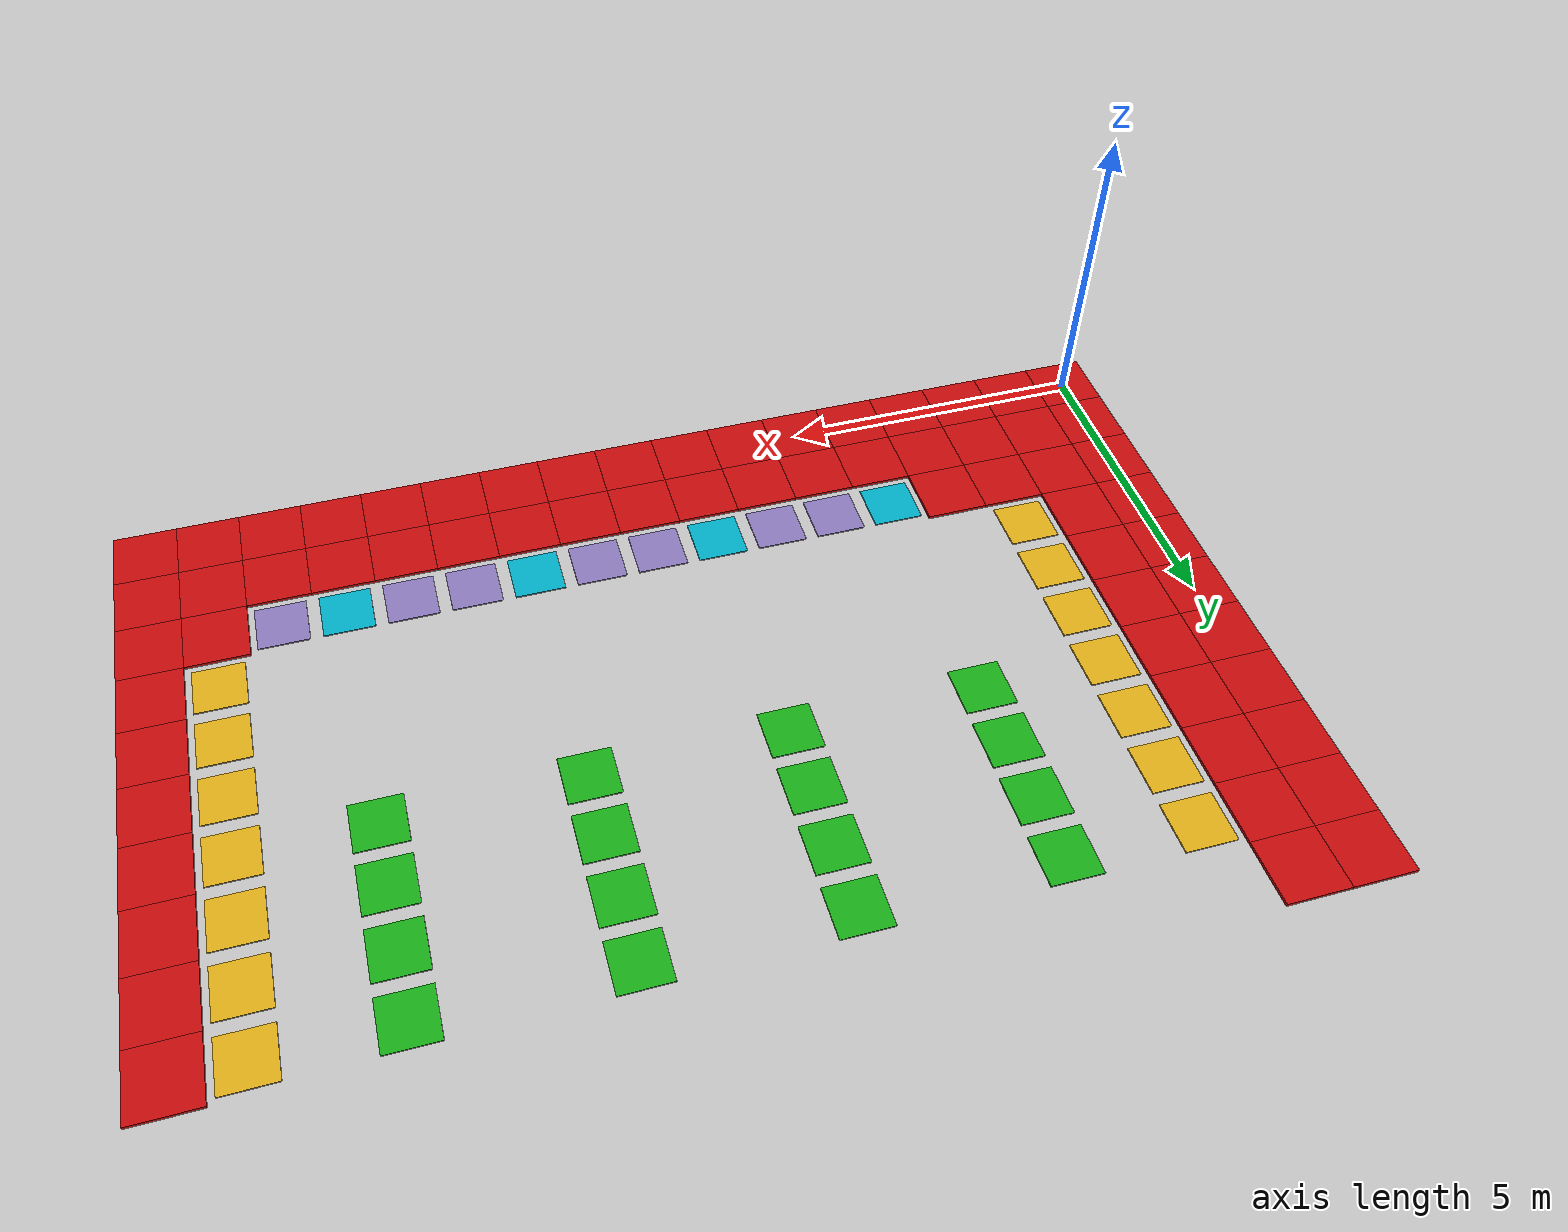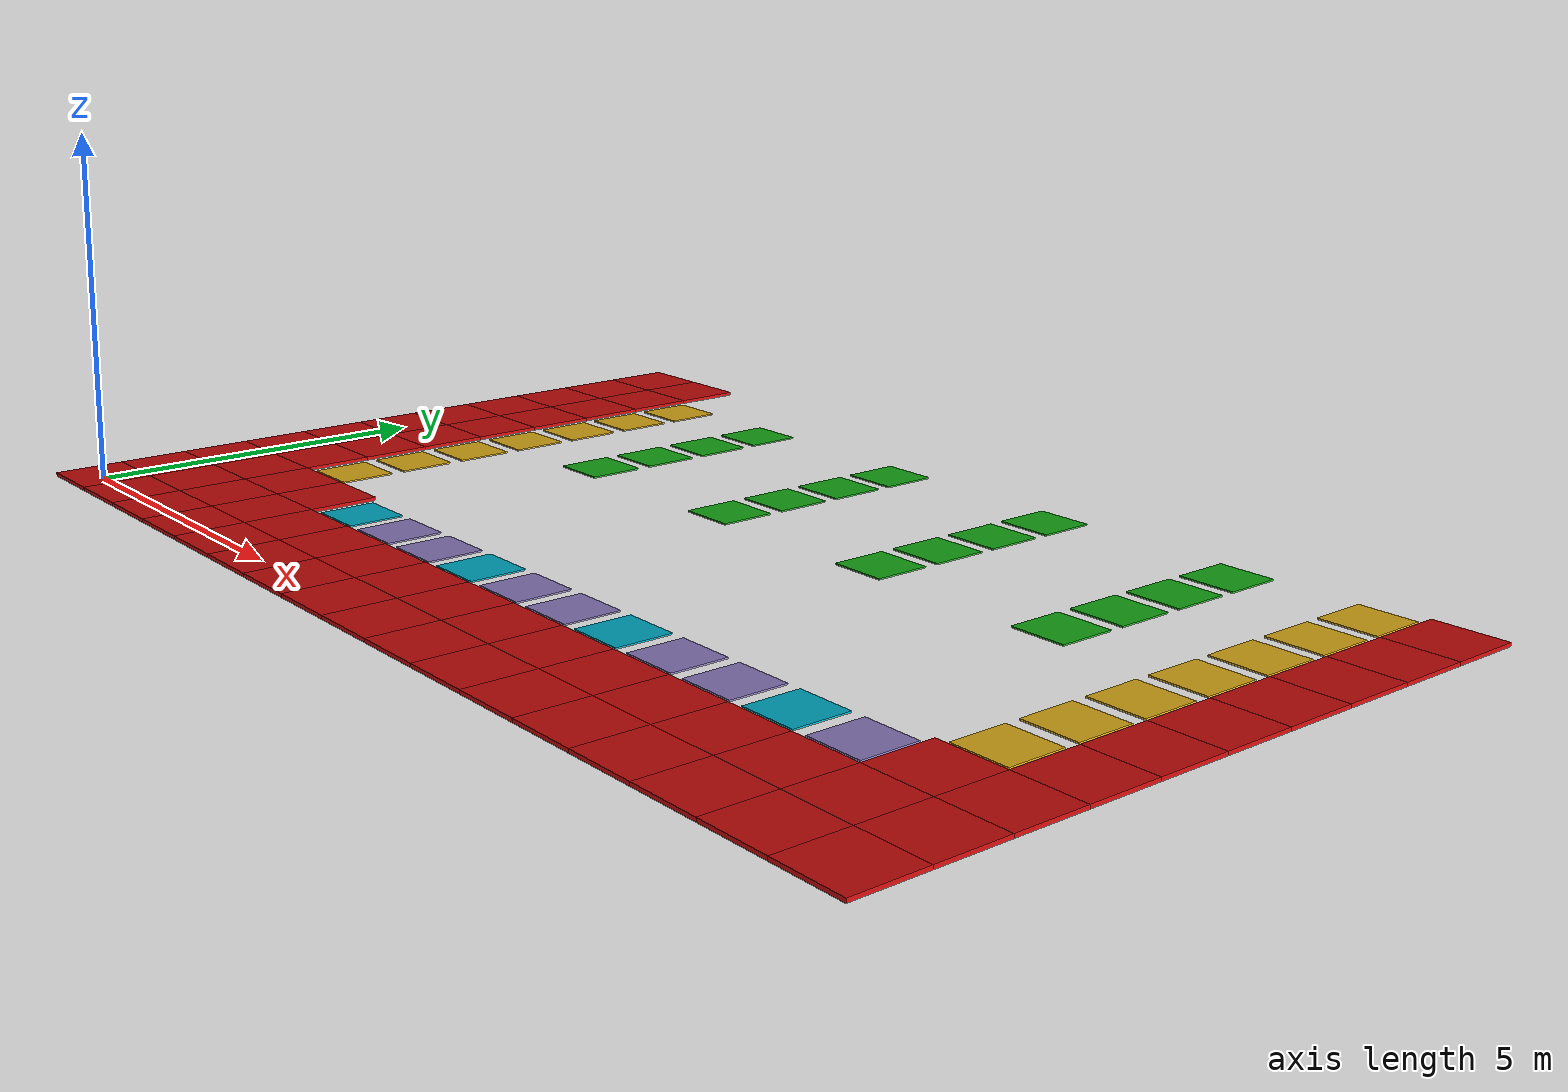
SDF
<sdf version="1.10">
 <world name="warehouse_grid">
  <model name="blocked_0000">
   <static>true</static>
   <pose>0.0
        0.0
        0.045
        0 0 0</pose>
   <link name="link">
    <visual name="visual">
     <geometry><box><size>1.0
                1.0
                0.05</size></box></geometry>
     <material><ambient>0.8 0.05 0.05 1</ambient><diffuse>0.8 0.05 0.05 1</diffuse></material>
    </visual>
   </link>
  </model>
  <model name="blocked_0001">
   <static>true</static>
   <pose>0.0
        1.0
        0.045
        0 0 0</pose>
   <link name="link">
    <visual name="visual">
     <geometry><box><size>1.0
                1.0
                0.05</size></box></geometry>
     <material><ambient>0.8 0.05 0.05 1</ambient><diffuse>0.8 0.05 0.05 1</diffuse></material>
    </visual>
   </link>
  </model>
  <model name="blocked_0002">
   <static>true</static>
   <pose>0.0
        2.0
        0.045
        0 0 0</pose>
   <link name="link">
    <visual name="visual">
     <geometry><box><size>1.0
                1.0
                0.05</size></box></geometry>
     <material><ambient>0.8 0.05 0.05 1</ambient><diffuse>0.8 0.05 0.05 1</diffuse></material>
    </visual>
   </link>
  </model>
  <model name="blocked_0003">
   <static>true</static>
   <pose>0.0
        3.0
        0.045
        0 0 0</pose>
   <link name="link">
    <visual name="visual">
     <geometry><box><size>1.0
                1.0
                0.05</size></box></geometry>
     <material><ambient>0.8 0.05 0.05 1</ambient><diffuse>0.8 0.05 0.05 1</diffuse></material>
    </visual>
   </link>
  </model>
  <model name="blocked_0004">
   <static>true</static>
   <pose>0.0
        4.0
        0.045
        0 0 0</pose>
   <link name="link">
    <visual name="visual">
     <geometry><box><size>1.0
                1.0
                0.05</size></box></geometry>
     <material><ambient>0.8 0.05 0.05 1</ambient><diffuse>0.8 0.05 0.05 1</diffuse></material>
    </visual>
   </link>
  </model>
  <model name="blocked_0005">
   <static>true</static>
   <pose>0.0
        5.0
        0.045
        0 0 0</pose>
   <link name="link">
    <visual name="visual">
     <geometry><box><size>1.0
                1.0
                0.05</size></box></geometry>
     <material><ambient>0.8 0.05 0.05 1</ambient><diffuse>0.8 0.05 0.05 1</diffuse></material>
    </visual>
   </link>
  </model>
  <model name="blocked_0006">
   <static>true</static>
   <pose>0.0
        6.0
        0.045
        0 0 0</pose>
   <link name="link">
    <visual name="visual">
     <geometry><box><size>1.0
                1.0
                0.05</size></box></geometry>
     <material><ambient>0.8 0.05 0.05 1</ambient><diffuse>0.8 0.05 0.05 1</diffuse></material>
    </visual>
   </link>
  </model>
  <model name="blocked_0007">
   <static>true</static>
   <pose>0.0
        7.0
        0.045
        0 0 0</pose>
   <link name="link">
    <visual name="visual">
     <geometry><box><size>1.0
                1.0
                0.05</size></box></geometry>
     <material><ambient>0.8 0.05 0.05 1</ambient><diffuse>0.8 0.05 0.05 1</diffuse></material>
    </visual>
   </link>
  </model>
  <model name="blocked_0008">
   <static>true</static>
   <pose>0.0
        8.0
        0.045
        0 0 0</pose>
   <link name="link">
    <visual name="visual">
     <geometry><box><size>1.0
                1.0
                0.05</size></box></geometry>
     <material><ambient>0.8 0.05 0.05 1</ambient><diffuse>0.8 0.05 0.05 1</diffuse></material>
    </visual>
   </link>
  </model>
  <model name="blocked_0009">
   <static>true</static>
   <pose>0.0
        9.0
        0.045
        0 0 0</pose>
   <link name="link">
    <visual name="visual">
     <geometry><box><size>1.0
                1.0
                0.05</size></box></geometry>
     <material><ambient>0.8 0.05 0.05 1</ambient><diffuse>0.8 0.05 0.05 1</diffuse></material>
    </visual>
   </link>
  </model>
  <model name="blocked_0010">
   <static>true</static>
   <pose>0.0
        10.0
        0.045
        0 0 0</pose>
   <link name="link">
    <visual name="visual">
     <geometry><box><size>1.0
                1.0
                0.05</size></box></geometry>
     <material><ambient>0.8 0.05 0.05 1</ambient><diffuse>0.8 0.05 0.05 1</diffuse></material>
    </visual>
   </link>
  </model>
  <model name="blocked_0024">
   <static>true</static>
   <pose>1.0
        0.0
        0.045
        0 0 0</pose>
   <link name="link">
    <visual name="visual">
     <geometry><box><size>1.0
                1.0
                0.05</size></box></geometry>
     <material><ambient>0.8 0.05 0.05 1</ambient><diffuse>0.8 0.05 0.05 1</diffuse></material>
    </visual>
   </link>
  </model>
  <model name="blocked_0025">
   <static>true</static>
   <pose>1.0
        1.0
        0.045
        0 0 0</pose>
   <link name="link">
    <visual name="visual">
     <geometry><box><size>1.0
                1.0
                0.05</size></box></geometry>
     <material><ambient>0.8 0.05 0.05 1</ambient><diffuse>0.8 0.05 0.05 1</diffuse></material>
    </visual>
   </link>
  </model>
  <model name="blocked_0026">
   <static>true</static>
   <pose>1.0
        2.0
        0.045
        0 0 0</pose>
   <link name="link">
    <visual name="visual">
     <geometry><box><size>1.0
                1.0
                0.05</size></box></geometry>
     <material><ambient>0.8 0.05 0.05 1</ambient><diffuse>0.8 0.05 0.05 1</diffuse></material>
    </visual>
   </link>
  </model>
  <model name="blocked_0027">
   <static>true</static>
   <pose>1.0
        3.0
        0.045
        0 0 0</pose>
   <link name="link">
    <visual name="visual">
     <geometry><box><size>1.0
                1.0
                0.05</size></box></geometry>
     <material><ambient>0.8 0.05 0.05 1</ambient><diffuse>0.8 0.05 0.05 1</diffuse></material>
    </visual>
   </link>
  </model>
  <model name="blocked_0028">
   <static>true</static>
   <pose>1.0
        4.0
        0.045
        0 0 0</pose>
   <link name="link">
    <visual name="visual">
     <geometry><box><size>1.0
                1.0
                0.05</size></box></geometry>
     <material><ambient>0.8 0.05 0.05 1</ambient><diffuse>0.8 0.05 0.05 1</diffuse></material>
    </visual>
   </link>
  </model>
  <model name="blocked_0029">
   <static>true</static>
   <pose>1.0
        5.0
        0.045
        0 0 0</pose>
   <link name="link">
    <visual name="visual">
     <geometry><box><size>1.0
                1.0
                0.05</size></box></geometry>
     <material><ambient>0.8 0.05 0.05 1</ambient><diffuse>0.8 0.05 0.05 1</diffuse></material>
    </visual>
   </link>
  </model>
  <model name="blocked_0030">
   <static>true</static>
   <pose>1.0
        6.0
        0.045
        0 0 0</pose>
   <link name="link">
    <visual name="visual">
     <geometry><box><size>1.0
                1.0
                0.05</size></box></geometry>
     <material><ambient>0.8 0.05 0.05 1</ambient><diffuse>0.8 0.05 0.05 1</diffuse></material>
    </visual>
   </link>
  </model>
  <model name="blocked_0031">
   <static>true</static>
   <pose>1.0
        7.0
        0.045
        0 0 0</pose>
   <link name="link">
    <visual name="visual">
     <geometry><box><size>1.0
                1.0
                0.05</size></box></geometry>
     <material><ambient>0.8 0.05 0.05 1</ambient><diffuse>0.8 0.05 0.05 1</diffuse></material>
    </visual>
   </link>
  </model>
  <model name="blocked_0032">
   <static>true</static>
   <pose>1.0
        8.0
        0.045
        0 0 0</pose>
   <link name="link">
    <visual name="visual">
     <geometry><box><size>1.0
                1.0
                0.05</size></box></geometry>
     <material><ambient>0.8 0.05 0.05 1</ambient><diffuse>0.8 0.05 0.05 1</diffuse></material>
    </visual>
   </link>
  </model>
  <model name="blocked_0033">
   <static>true</static>
   <pose>1.0
        9.0
        0.045
        0 0 0</pose>
   <link name="link">
    <visual name="visual">
     <geometry><box><size>1.0
                1.0
                0.05</size></box></geometry>
     <material><ambient>0.8 0.05 0.05 1</ambient><diffuse>0.8 0.05 0.05 1</diffuse></material>
    </visual>
   </link>
  </model>
  <model name="blocked_0034">
   <static>true</static>
   <pose>1.0
        10.0
        0.045
        0 0 0</pose>
   <link name="link">
    <visual name="visual">
     <geometry><box><size>1.0
                1.0
                0.05</size></box></geometry>
     <material><ambient>0.8 0.05 0.05 1</ambient><diffuse>0.8 0.05 0.05 1</diffuse></material>
    </visual>
   </link>
  </model>
  <model name="blocked_0048">
   <static>true</static>
   <pose>2.0
        0.0
        0.045
        0 0 0</pose>
   <link name="link">
    <visual name="visual">
     <geometry><box><size>1.0
                1.0
                0.05</size></box></geometry>
     <material><ambient>0.8 0.05 0.05 1</ambient><diffuse>0.8 0.05 0.05 1</diffuse></material>
    </visual>
   </link>
  </model>
  <model name="blocked_0049">
   <static>true</static>
   <pose>2.0
        1.0
        0.045
        0 0 0</pose>
   <link name="link">
    <visual name="visual">
     <geometry><box><size>1.0
                1.0
                0.05</size></box></geometry>
     <material><ambient>0.8 0.05 0.05 1</ambient><diffuse>0.8 0.05 0.05 1</diffuse></material>
    </visual>
   </link>
  </model>
  <model name="blocked_0050">
   <static>true</static>
   <pose>2.0
        2.0
        0.045
        0 0 0</pose>
   <link name="link">
    <visual name="visual">
     <geometry><box><size>1.0
                1.0
                0.05</size></box></geometry>
     <material><ambient>0.8 0.05 0.05 1</ambient><diffuse>0.8 0.05 0.05 1</diffuse></material>
    </visual>
   </link>
  </model>
  <model name="blocked_0054">
   <static>true</static>
   <pose>3.0
        0.0
        0.045
        0 0 0</pose>
   <link name="link">
    <visual name="visual">
     <geometry><box><size>1.0
                1.0
                0.05</size></box></geometry>
     <material><ambient>0.8 0.05 0.05 1</ambient><diffuse>0.8 0.05 0.05 1</diffuse></material>
    </visual>
   </link>
  </model>
  <model name="blocked_0055">
   <static>true</static>
   <pose>3.0
        1.0
        0.045
        0 0 0</pose>
   <link name="link">
    <visual name="visual">
     <geometry><box><size>1.0
                1.0
                0.05</size></box></geometry>
     <material><ambient>0.8 0.05 0.05 1</ambient><diffuse>0.8 0.05 0.05 1</diffuse></material>
    </visual>
   </link>
  </model>
  <model name="blocked_0056">
   <static>true</static>
   <pose>3.0
        2.0
        0.045
        0 0 0</pose>
   <link name="link">
    <visual name="visual">
     <geometry><box><size>1.0
                1.0
                0.05</size></box></geometry>
     <material><ambient>0.8 0.05 0.05 1</ambient><diffuse>0.8 0.05 0.05 1</diffuse></material>
    </visual>
   </link>
  </model>
  <model name="blocked_0060">
   <static>true</static>
   <pose>4.0
        0.0
        0.045
        0 0 0</pose>
   <link name="link">
    <visual name="visual">
     <geometry><box><size>1.0
                1.0
                0.05</size></box></geometry>
     <material><ambient>0.8 0.05 0.05 1</ambient><diffuse>0.8 0.05 0.05 1</diffuse></material>
    </visual>
   </link>
  </model>
  <model name="blocked_0061">
   <static>true</static>
   <pose>4.0
        1.0
        0.045
        0 0 0</pose>
   <link name="link">
    <visual name="visual">
     <geometry><box><size>1.0
                1.0
                0.05</size></box></geometry>
     <material><ambient>0.8 0.05 0.05 1</ambient><diffuse>0.8 0.05 0.05 1</diffuse></material>
    </visual>
   </link>
  </model>
  <model name="blocked_0064">
   <static>true</static>
   <pose>5.0
        0.0
        0.045
        0 0 0</pose>
   <link name="link">
    <visual name="visual">
     <geometry><box><size>1.0
                1.0
                0.05</size></box></geometry>
     <material><ambient>0.8 0.05 0.05 1</ambient><diffuse>0.8 0.05 0.05 1</diffuse></material>
    </visual>
   </link>
  </model>
  <model name="blocked_0065">
   <static>true</static>
   <pose>5.0
        1.0
        0.045
        0 0 0</pose>
   <link name="link">
    <visual name="visual">
     <geometry><box><size>1.0
                1.0
                0.05</size></box></geometry>
     <material><ambient>0.8 0.05 0.05 1</ambient><diffuse>0.8 0.05 0.05 1</diffuse></material>
    </visual>
   </link>
  </model>
  <model name="blocked_0068">
   <static>true</static>
   <pose>6.0
        0.0
        0.045
        0 0 0</pose>
   <link name="link">
    <visual name="visual">
     <geometry><box><size>1.0
                1.0
                0.05</size></box></geometry>
     <material><ambient>0.8 0.05 0.05 1</ambient><diffuse>0.8 0.05 0.05 1</diffuse></material>
    </visual>
   </link>
  </model>
  <model name="blocked_0069">
   <static>true</static>
   <pose>6.0
        1.0
        0.045
        0 0 0</pose>
   <link name="link">
    <visual name="visual">
     <geometry><box><size>1.0
                1.0
                0.05</size></box></geometry>
     <material><ambient>0.8 0.05 0.05 1</ambient><diffuse>0.8 0.05 0.05 1</diffuse></material>
    </visual>
   </link>
  </model>
  <model name="blocked_0072">
   <static>true</static>
   <pose>7.0
        0.0
        0.045
        0 0 0</pose>
   <link name="link">
    <visual name="visual">
     <geometry><box><size>1.0
                1.0
                0.05</size></box></geometry>
     <material><ambient>0.8 0.05 0.05 1</ambient><diffuse>0.8 0.05 0.05 1</diffuse></material>
    </visual>
   </link>
  </model>
  <model name="blocked_0073">
   <static>true</static>
   <pose>7.0
        1.0
        0.045
        0 0 0</pose>
   <link name="link">
    <visual name="visual">
     <geometry><box><size>1.0
                1.0
                0.05</size></box></geometry>
     <material><ambient>0.8 0.05 0.05 1</ambient><diffuse>0.8 0.05 0.05 1</diffuse></material>
    </visual>
   </link>
  </model>
  <model name="blocked_0076">
   <static>true</static>
   <pose>8.0
        0.0
        0.045
        0 0 0</pose>
   <link name="link">
    <visual name="visual">
     <geometry><box><size>1.0
                1.0
                0.05</size></box></geometry>
     <material><ambient>0.8 0.05 0.05 1</ambient><diffuse>0.8 0.05 0.05 1</diffuse></material>
    </visual>
   </link>
  </model>
  <model name="blocked_0077">
   <static>true</static>
   <pose>8.0
        1.0
        0.045
        0 0 0</pose>
   <link name="link">
    <visual name="visual">
     <geometry><box><size>1.0
                1.0
                0.05</size></box></geometry>
     <material><ambient>0.8 0.05 0.05 1</ambient><diffuse>0.8 0.05 0.05 1</diffuse></material>
    </visual>
   </link>
  </model>
  <model name="blocked_0080">
   <static>true</static>
   <pose>9.0
        0.0
        0.045
        0 0 0</pose>
   <link name="link">
    <visual name="visual">
     <geometry><box><size>1.0
                1.0
                0.05</size></box></geometry>
     <material><ambient>0.8 0.05 0.05 1</ambient><diffuse>0.8 0.05 0.05 1</diffuse></material>
    </visual>
   </link>
  </model>
  <model name="blocked_0081">
   <static>true</static>
   <pose>9.0
        1.0
        0.045
        0 0 0</pose>
   <link name="link">
    <visual name="visual">
     <geometry><box><size>1.0
                1.0
                0.05</size></box></geometry>
     <material><ambient>0.8 0.05 0.05 1</ambient><diffuse>0.8 0.05 0.05 1</diffuse></material>
    </visual>
   </link>
  </model>
  <model name="blocked_0084">
   <static>true</static>
   <pose>10.0
        0.0
        0.045
        0 0 0</pose>
   <link name="link">
    <visual name="visual">
     <geometry><box><size>1.0
                1.0
                0.05</size></box></geometry>
     <material><ambient>0.8 0.05 0.05 1</ambient><diffuse>0.8 0.05 0.05 1</diffuse></material>
    </visual>
   </link>
  </model>
  <model name="blocked_0085">
   <static>true</static>
   <pose>10.0
        1.0
        0.045
        0 0 0</pose>
   <link name="link">
    <visual name="visual">
     <geometry><box><size>1.0
                1.0
                0.05</size></box></geometry>
     <material><ambient>0.8 0.05 0.05 1</ambient><diffuse>0.8 0.05 0.05 1</diffuse></material>
    </visual>
   </link>
  </model>
  <model name="blocked_0088">
   <static>true</static>
   <pose>11.0
        0.0
        0.045
        0 0 0</pose>
   <link name="link">
    <visual name="visual">
     <geometry><box><size>1.0
                1.0
                0.05</size></box></geometry>
     <material><ambient>0.8 0.05 0.05 1</ambient><diffuse>0.8 0.05 0.05 1</diffuse></material>
    </visual>
   </link>
  </model>
  <model name="blocked_0089">
   <static>true</static>
   <pose>11.0
        1.0
        0.045
        0 0 0</pose>
   <link name="link">
    <visual name="visual">
     <geometry><box><size>1.0
                1.0
                0.05</size></box></geometry>
     <material><ambient>0.8 0.05 0.05 1</ambient><diffuse>0.8 0.05 0.05 1</diffuse></material>
    </visual>
   </link>
  </model>
  <model name="blocked_0092">
   <static>true</static>
   <pose>12.0
        0.0
        0.045
        0 0 0</pose>
   <link name="link">
    <visual name="visual">
     <geometry><box><size>1.0
                1.0
                0.05</size></box></geometry>
     <material><ambient>0.8 0.05 0.05 1</ambient><diffuse>0.8 0.05 0.05 1</diffuse></material>
    </visual>
   </link>
  </model>
  <model name="blocked_0093">
   <static>true</static>
   <pose>12.0
        1.0
        0.045
        0 0 0</pose>
   <link name="link">
    <visual name="visual">
     <geometry><box><size>1.0
                1.0
                0.05</size></box></geometry>
     <material><ambient>0.8 0.05 0.05 1</ambient><diffuse>0.8 0.05 0.05 1</diffuse></material>
    </visual>
   </link>
  </model>
  <model name="blocked_0096">
   <static>true</static>
   <pose>13.0
        0.0
        0.045
        0 0 0</pose>
   <link name="link">
    <visual name="visual">
     <geometry><box><size>1.0
                1.0
                0.05</size></box></geometry>
     <material><ambient>0.8 0.05 0.05 1</ambient><diffuse>0.8 0.05 0.05 1</diffuse></material>
    </visual>
   </link>
  </model>
  <model name="blocked_0097">
   <static>true</static>
   <pose>13.0
        1.0
        0.045
        0 0 0</pose>
   <link name="link">
    <visual name="visual">
     <geometry><box><size>1.0
                1.0
                0.05</size></box></geometry>
     <material><ambient>0.8 0.05 0.05 1</ambient><diffuse>0.8 0.05 0.05 1</diffuse></material>
    </visual>
   </link>
  </model>
  <model name="blocked_0100">
   <static>true</static>
   <pose>14.0
        0.0
        0.045
        0 0 0</pose>
   <link name="link">
    <visual name="visual">
     <geometry><box><size>1.0
                1.0
                0.05</size></box></geometry>
     <material><ambient>0.8 0.05 0.05 1</ambient><diffuse>0.8 0.05 0.05 1</diffuse></material>
    </visual>
   </link>
  </model>
  <model name="blocked_0101">
   <static>true</static>
   <pose>14.0
        1.0
        0.045
        0 0 0</pose>
   <link name="link">
    <visual name="visual">
     <geometry><box><size>1.0
                1.0
                0.05</size></box></geometry>
     <material><ambient>0.8 0.05 0.05 1</ambient><diffuse>0.8 0.05 0.05 1</diffuse></material>
    </visual>
   </link>
  </model>
  <model name="blocked_0104">
   <static>true</static>
   <pose>15.0
        0.0
        0.045
        0 0 0</pose>
   <link name="link">
    <visual name="visual">
     <geometry><box><size>1.0
                1.0
                0.05</size></box></geometry>
     <material><ambient>0.8 0.05 0.05 1</ambient><diffuse>0.8 0.05 0.05 1</diffuse></material>
    </visual>
   </link>
  </model>
  <model name="blocked_0105">
   <static>true</static>
   <pose>15.0
        1.0
        0.045
        0 0 0</pose>
   <link name="link">
    <visual name="visual">
     <geometry><box><size>1.0
                1.0
                0.05</size></box></geometry>
     <material><ambient>0.8 0.05 0.05 1</ambient><diffuse>0.8 0.05 0.05 1</diffuse></material>
    </visual>
   </link>
  </model>
  <model name="blocked_0106">
   <static>true</static>
   <pose>15.0
        2.0
        0.045
        0 0 0</pose>
   <link name="link">
    <visual name="visual">
     <geometry><box><size>1.0
                1.0
                0.05</size></box></geometry>
     <material><ambient>0.8 0.05 0.05 1</ambient><diffuse>0.8 0.05 0.05 1</diffuse></material>
    </visual>
   </link>
  </model>
  <model name="blocked_0110">
   <static>true</static>
   <pose>16.0
        0.0
        0.045
        0 0 0</pose>
   <link name="link">
    <visual name="visual">
     <geometry><box><size>1.0
                1.0
                0.05</size></box></geometry>
     <material><ambient>0.8 0.05 0.05 1</ambient><diffuse>0.8 0.05 0.05 1</diffuse></material>
    </visual>
   </link>
  </model>
  <model name="blocked_0111">
   <static>true</static>
   <pose>16.0
        1.0
        0.045
        0 0 0</pose>
   <link name="link">
    <visual name="visual">
     <geometry><box><size>1.0
                1.0
                0.05</size></box></geometry>
     <material><ambient>0.8 0.05 0.05 1</ambient><diffuse>0.8 0.05 0.05 1</diffuse></material>
    </visual>
   </link>
  </model>
  <model name="blocked_0112">
   <static>true</static>
   <pose>16.0
        2.0
        0.045
        0 0 0</pose>
   <link name="link">
    <visual name="visual">
     <geometry><box><size>1.0
                1.0
                0.05</size></box></geometry>
     <material><ambient>0.8 0.05 0.05 1</ambient><diffuse>0.8 0.05 0.05 1</diffuse></material>
    </visual>
   </link>
  </model>
  <model name="blocked_0113">
   <static>true</static>
   <pose>16.0
        3.0
        0.045
        0 0 0</pose>
   <link name="link">
    <visual name="visual">
     <geometry><box><size>1.0
                1.0
                0.05</size></box></geometry>
     <material><ambient>0.8 0.05 0.05 1</ambient><diffuse>0.8 0.05 0.05 1</diffuse></material>
    </visual>
   </link>
  </model>
  <model name="blocked_0114">
   <static>true</static>
   <pose>16.0
        4.0
        0.045
        0 0 0</pose>
   <link name="link">
    <visual name="visual">
     <geometry><box><size>1.0
                1.0
                0.05</size></box></geometry>
     <material><ambient>0.8 0.05 0.05 1</ambient><diffuse>0.8 0.05 0.05 1</diffuse></material>
    </visual>
   </link>
  </model>
  <model name="blocked_0115">
   <static>true</static>
   <pose>16.0
        5.0
        0.045
        0 0 0</pose>
   <link name="link">
    <visual name="visual">
     <geometry><box><size>1.0
                1.0
                0.05</size></box></geometry>
     <material><ambient>0.8 0.05 0.05 1</ambient><diffuse>0.8 0.05 0.05 1</diffuse></material>
    </visual>
   </link>
  </model>
  <model name="blocked_0116">
   <static>true</static>
   <pose>16.0
        6.0
        0.045
        0 0 0</pose>
   <link name="link">
    <visual name="visual">
     <geometry><box><size>1.0
                1.0
                0.05</size></box></geometry>
     <material><ambient>0.8 0.05 0.05 1</ambient><diffuse>0.8 0.05 0.05 1</diffuse></material>
    </visual>
   </link>
  </model>
  <model name="blocked_0117">
   <static>true</static>
   <pose>16.0
        7.0
        0.045
        0 0 0</pose>
   <link name="link">
    <visual name="visual">
     <geometry><box><size>1.0
                1.0
                0.05</size></box></geometry>
     <material><ambient>0.8 0.05 0.05 1</ambient><diffuse>0.8 0.05 0.05 1</diffuse></material>
    </visual>
   </link>
  </model>
  <model name="blocked_0118">
   <static>true</static>
   <pose>16.0
        8.0
        0.045
        0 0 0</pose>
   <link name="link">
    <visual name="visual">
     <geometry><box><size>1.0
                1.0
                0.05</size></box></geometry>
     <material><ambient>0.8 0.05 0.05 1</ambient><diffuse>0.8 0.05 0.05 1</diffuse></material>
    </visual>
   </link>
  </model>
  <model name="blocked_0119">
   <static>true</static>
   <pose>16.0
        9.0
        0.045
        0 0 0</pose>
   <link name="link">
    <visual name="visual">
     <geometry><box><size>1.0
                1.0
                0.05</size></box></geometry>
     <material><ambient>0.8 0.05 0.05 1</ambient><diffuse>0.8 0.05 0.05 1</diffuse></material>
    </visual>
   </link>
  </model>
  <model name="shelf_037">
   <static>true</static>
   <pose>4.0
        6.0
        0.02
        0 0 0</pose>
   <link name="link">
    <visual name="visual">
     <geometry><box><size>0.8
                0.8
                0.02</size></box></geometry>
     <material><ambient>0.10 0.70 0.10 1</ambient><diffuse>0.10 0.70 0.10 1</diffuse></material>
    </visual>
   </link>
  </model>
  <model name="shelf_038">
   <static>true</static>
   <pose>4.0
        7.0
        0.02
        0 0 0</pose>
   <link name="link">
    <visual name="visual">
     <geometry><box><size>0.8
                0.8
                0.02</size></box></geometry>
     <material><ambient>0.10 0.70 0.10 1</ambient><diffuse>0.10 0.70 0.10 1</diffuse></material>
    </visual>
   </link>
  </model>
  <model name="shelf_039">
   <static>true</static>
   <pose>4.0
        8.0
        0.02
        0 0 0</pose>
   <link name="link">
    <visual name="visual">
     <geometry><box><size>0.8
                0.8
                0.02</size></box></geometry>
     <material><ambient>0.10 0.70 0.10 1</ambient><diffuse>0.10 0.70 0.10 1</diffuse></material>
    </visual>
   </link>
  </model>
  <model name="shelf_040">
   <static>true</static>
   <pose>4.0
        9.0
        0.02
        0 0 0</pose>
   <link name="link">
    <visual name="visual">
     <geometry><box><size>0.8
                0.8
                0.02</size></box></geometry>
     <material><ambient>0.10 0.70 0.10 1</ambient><diffuse>0.10 0.70 0.10 1</diffuse></material>
    </visual>
   </link>
  </model>
  <model name="shelf_046">
   <static>true</static>
   <pose>7.0
        6.0
        0.02
        0 0 0</pose>
   <link name="link">
    <visual name="visual">
     <geometry><box><size>0.8
                0.8
                0.02</size></box></geometry>
     <material><ambient>0.10 0.70 0.10 1</ambient><diffuse>0.10 0.70 0.10 1</diffuse></material>
    </visual>
   </link>
  </model>
  <model name="shelf_047">
   <static>true</static>
   <pose>7.0
        7.0
        0.02
        0 0 0</pose>
   <link name="link">
    <visual name="visual">
     <geometry><box><size>0.8
                0.8
                0.02</size></box></geometry>
     <material><ambient>0.10 0.70 0.10 1</ambient><diffuse>0.10 0.70 0.10 1</diffuse></material>
    </visual>
   </link>
  </model>
  <model name="shelf_048">
   <static>true</static>
   <pose>7.0
        8.0
        0.02
        0 0 0</pose>
   <link name="link">
    <visual name="visual">
     <geometry><box><size>0.8
                0.8
                0.02</size></box></geometry>
     <material><ambient>0.10 0.70 0.10 1</ambient><diffuse>0.10 0.70 0.10 1</diffuse></material>
    </visual>
   </link>
  </model>
  <model name="shelf_049">
   <static>true</static>
   <pose>7.0
        9.0
        0.02
        0 0 0</pose>
   <link name="link">
    <visual name="visual">
     <geometry><box><size>0.8
                0.8
                0.02</size></box></geometry>
     <material><ambient>0.10 0.70 0.10 1</ambient><diffuse>0.10 0.70 0.10 1</diffuse></material>
    </visual>
   </link>
  </model>
  <model name="shelf_055">
   <static>true</static>
   <pose>10.0
        6.0
        0.02
        0 0 0</pose>
   <link name="link">
    <visual name="visual">
     <geometry><box><size>0.8
                0.8
                0.02</size></box></geometry>
     <material><ambient>0.10 0.70 0.10 1</ambient><diffuse>0.10 0.70 0.10 1</diffuse></material>
    </visual>
   </link>
  </model>
  <model name="shelf_056">
   <static>true</static>
   <pose>10.0
        7.0
        0.02
        0 0 0</pose>
   <link name="link">
    <visual name="visual">
     <geometry><box><size>0.8
                0.8
                0.02</size></box></geometry>
     <material><ambient>0.10 0.70 0.10 1</ambient><diffuse>0.10 0.70 0.10 1</diffuse></material>
    </visual>
   </link>
  </model>
  <model name="shelf_057">
   <static>true</static>
   <pose>10.0
        8.0
        0.02
        0 0 0</pose>
   <link name="link">
    <visual name="visual">
     <geometry><box><size>0.8
                0.8
                0.02</size></box></geometry>
     <material><ambient>0.10 0.70 0.10 1</ambient><diffuse>0.10 0.70 0.10 1</diffuse></material>
    </visual>
   </link>
  </model>
  <model name="shelf_058">
   <static>true</static>
   <pose>10.0
        9.0
        0.02
        0 0 0</pose>
   <link name="link">
    <visual name="visual">
     <geometry><box><size>0.8
                0.8
                0.02</size></box></geometry>
     <material><ambient>0.10 0.70 0.10 1</ambient><diffuse>0.10 0.70 0.10 1</diffuse></material>
    </visual>
   </link>
  </model>
  <model name="shelf_064">
   <static>true</static>
   <pose>13.0
        6.0
        0.02
        0 0 0</pose>
   <link name="link">
    <visual name="visual">
     <geometry><box><size>0.8
                0.8
                0.02</size></box></geometry>
     <material><ambient>0.10 0.70 0.10 1</ambient><diffuse>0.10 0.70 0.10 1</diffuse></material>
    </visual>
   </link>
  </model>
  <model name="shelf_065">
   <static>true</static>
   <pose>13.0
        7.0
        0.02
        0 0 0</pose>
   <link name="link">
    <visual name="visual">
     <geometry><box><size>0.8
                0.8
                0.02</size></box></geometry>
     <material><ambient>0.10 0.70 0.10 1</ambient><diffuse>0.10 0.70 0.10 1</diffuse></material>
    </visual>
   </link>
  </model>
  <model name="shelf_066">
   <static>true</static>
   <pose>13.0
        8.0
        0.02
        0 0 0</pose>
   <link name="link">
    <visual name="visual">
     <geometry><box><size>0.8
                0.8
                0.02</size></box></geometry>
     <material><ambient>0.10 0.70 0.10 1</ambient><diffuse>0.10 0.70 0.10 1</diffuse></material>
    </visual>
   </link>
  </model>
  <model name="shelf_067">
   <static>true</static>
   <pose>13.0
        9.0
        0.02
        0 0 0</pose>
   <link name="link">
    <visual name="visual">
     <geometry><box><size>0.8
                0.8
                0.02</size></box></geometry>
     <material><ambient>0.10 0.70 0.10 1</ambient><diffuse>0.10 0.70 0.10 1</diffuse></material>
    </visual>
   </link>
  </model>
  <model name="dropoff_019">
   <static>true</static>
   <pose>2.0
        3.0
        0.02
        0 0 0</pose>
   <link name="link">
    <visual name="visual">
     <geometry><box><size>0.8
                0.8
                0.02</size></box></geometry>
     <material><ambient>0.90 0.70 0.10 1</ambient><diffuse>0.90 0.70 0.10 1</diffuse></material>
    </visual>
   </link>
  </model>
  <model name="dropoff_020">
   <static>true</static>
   <pose>2.0
        4.0
        0.02
        0 0 0</pose>
   <link name="link">
    <visual name="visual">
     <geometry><box><size>0.8
                0.8
                0.02</size></box></geometry>
     <material><ambient>0.90 0.70 0.10 1</ambient><diffuse>0.90 0.70 0.10 1</diffuse></material>
    </visual>
   </link>
  </model>
  <model name="dropoff_021">
   <static>true</static>
   <pose>2.0
        5.0
        0.02
        0 0 0</pose>
   <link name="link">
    <visual name="visual">
     <geometry><box><size>0.8
                0.8
                0.02</size></box></geometry>
     <material><ambient>0.90 0.70 0.10 1</ambient><diffuse>0.90 0.70 0.10 1</diffuse></material>
    </visual>
   </link>
  </model>
  <model name="dropoff_022">
   <static>true</static>
   <pose>2.0
        6.0
        0.02
        0 0 0</pose>
   <link name="link">
    <visual name="visual">
     <geometry><box><size>0.8
                0.8
                0.02</size></box></geometry>
     <material><ambient>0.90 0.70 0.10 1</ambient><diffuse>0.90 0.70 0.10 1</diffuse></material>
    </visual>
   </link>
  </model>
  <model name="dropoff_023">
   <static>true</static>
   <pose>2.0
        7.0
        0.02
        0 0 0</pose>
   <link name="link">
    <visual name="visual">
     <geometry><box><size>0.8
                0.8
                0.02</size></box></geometry>
     <material><ambient>0.90 0.70 0.10 1</ambient><diffuse>0.90 0.70 0.10 1</diffuse></material>
    </visual>
   </link>
  </model>
  <model name="dropoff_024">
   <static>true</static>
   <pose>2.0
        8.0
        0.02
        0 0 0</pose>
   <link name="link">
    <visual name="visual">
     <geometry><box><size>0.8
                0.8
                0.02</size></box></geometry>
     <material><ambient>0.90 0.70 0.10 1</ambient><diffuse>0.90 0.70 0.10 1</diffuse></material>
    </visual>
   </link>
  </model>
  <model name="dropoff_025">
   <static>true</static>
   <pose>2.0
        9.0
        0.02
        0 0 0</pose>
   <link name="link">
    <visual name="visual">
     <geometry><box><size>0.8
                0.8
                0.02</size></box></geometry>
     <material><ambient>0.90 0.70 0.10 1</ambient><diffuse>0.90 0.70 0.10 1</diffuse></material>
    </visual>
   </link>
  </model>
  <model name="dropoff_028">
   <static>true</static>
   <pose>15.0
        3.0
        0.02
        0 0 0</pose>
   <link name="link">
    <visual name="visual">
     <geometry><box><size>0.8
                0.8
                0.02</size></box></geometry>
     <material><ambient>0.90 0.70 0.10 1</ambient><diffuse>0.90 0.70 0.10 1</diffuse></material>
    </visual>
   </link>
  </model>
  <model name="dropoff_029">
   <static>true</static>
   <pose>15.0
        4.0
        0.02
        0 0 0</pose>
   <link name="link">
    <visual name="visual">
     <geometry><box><size>0.8
                0.8
                0.02</size></box></geometry>
     <material><ambient>0.90 0.70 0.10 1</ambient><diffuse>0.90 0.70 0.10 1</diffuse></material>
    </visual>
   </link>
  </model>
  <model name="dropoff_030">
   <static>true</static>
   <pose>15.0
        5.0
        0.02
        0 0 0</pose>
   <link name="link">
    <visual name="visual">
     <geometry><box><size>0.8
                0.8
                0.02</size></box></geometry>
     <material><ambient>0.90 0.70 0.10 1</ambient><diffuse>0.90 0.70 0.10 1</diffuse></material>
    </visual>
   </link>
  </model>
  <model name="dropoff_031">
   <static>true</static>
   <pose>15.0
        6.0
        0.02
        0 0 0</pose>
   <link name="link">
    <visual name="visual">
     <geometry><box><size>0.8
                0.8
                0.02</size></box></geometry>
     <material><ambient>0.90 0.70 0.10 1</ambient><diffuse>0.90 0.70 0.10 1</diffuse></material>
    </visual>
   </link>
  </model>
  <model name="dropoff_032">
   <static>true</static>
   <pose>15.0
        7.0
        0.02
        0 0 0</pose>
   <link name="link">
    <visual name="visual">
     <geometry><box><size>0.8
                0.8
                0.02</size></box></geometry>
     <material><ambient>0.90 0.70 0.10 1</ambient><diffuse>0.90 0.70 0.10 1</diffuse></material>
    </visual>
   </link>
  </model>
  <model name="dropoff_033">
   <static>true</static>
   <pose>15.0
        8.0
        0.02
        0 0 0</pose>
   <link name="link">
    <visual name="visual">
     <geometry><box><size>0.8
                0.8
                0.02</size></box></geometry>
     <material><ambient>0.90 0.70 0.10 1</ambient><diffuse>0.90 0.70 0.10 1</diffuse></material>
    </visual>
   </link>
  </model>
  <model name="dropoff_034">
   <static>true</static>
   <pose>15.0
        9.0
        0.02
        0 0 0</pose>
   <link name="link">
    <visual name="visual">
     <geometry><box><size>0.8
                0.8
                0.02</size></box></geometry>
     <material><ambient>0.90 0.70 0.10 1</ambient><diffuse>0.90 0.70 0.10 1</diffuse></material>
    </visual>
   </link>
  </model>
  <model name="charging_005">
   <static>true</static>
   <pose>4.0
        2.0
        0.02
        0 0 0</pose>
   <link name="link">
    <visual name="visual">
     <geometry><box><size>0.8
                0.8
                0.02</size></box></geometry>
     <material><ambient>0.00 0.70 0.80 1</ambient><diffuse>0.00 0.70 0.80 1</diffuse></material>
    </visual>
   </link>
  </model>
  <model name="charge_queue_008">
   <static>true</static>
   <pose>5.0
        2.0
        0.02
        0 0 0</pose>
   <link name="link">
    <visual name="visual">
     <geometry><box><size>0.8
                0.8
                0.02</size></box></geometry>
     <material><ambient>0.56 0.49 0.76 1</ambient><diffuse>0.56 0.49 0.76 1</diffuse></material>
    </visual>
   </link>
  </model>
  <model name="charge_queue_009">
   <static>true</static>
   <pose>6.0
        2.0
        0.02
        0 0 0</pose>
   <link name="link">
    <visual name="visual">
     <geometry><box><size>0.8
                0.8
                0.02</size></box></geometry>
     <material><ambient>0.56 0.49 0.76 1</ambient><diffuse>0.56 0.49 0.76 1</diffuse></material>
    </visual>
   </link>
  </model>
  <model name="charging_006">
   <static>true</static>
   <pose>7.0
        2.0
        0.02
        0 0 0</pose>
   <link name="link">
    <visual name="visual">
     <geometry><box><size>0.8
                0.8
                0.02</size></box></geometry>
     <material><ambient>0.00 0.70 0.80 1</ambient><diffuse>0.00 0.70 0.80 1</diffuse></material>
    </visual>
   </link>
  </model>
  <model name="charge_queue_010">
   <static>true</static>
   <pose>8.0
        2.0
        0.02
        0 0 0</pose>
   <link name="link">
    <visual name="visual">
     <geometry><box><size>0.8
                0.8
                0.02</size></box></geometry>
     <material><ambient>0.56 0.49 0.76 1</ambient><diffuse>0.56 0.49 0.76 1</diffuse></material>
    </visual>
   </link>
  </model>
  <model name="charge_queue_011">
   <static>true</static>
   <pose>9.0
        2.0
        0.02
        0 0 0</pose>
   <link name="link">
    <visual name="visual">
     <geometry><box><size>0.8
                0.8
                0.02</size></box></geometry>
     <material><ambient>0.56 0.49 0.76 1</ambient><diffuse>0.56 0.49 0.76 1</diffuse></material>
    </visual>
   </link>
  </model>
  <model name="charging_007">
   <static>true</static>
   <pose>10.0
        2.0
        0.02
        0 0 0</pose>
   <link name="link">
    <visual name="visual">
     <geometry><box><size>0.8
                0.8
                0.02</size></box></geometry>
     <material><ambient>0.00 0.70 0.80 1</ambient><diffuse>0.00 0.70 0.80 1</diffuse></material>
    </visual>
   </link>
  </model>
  <model name="charge_queue_012">
   <static>true</static>
   <pose>11.0
        2.0
        0.02
        0 0 0</pose>
   <link name="link">
    <visual name="visual">
     <geometry><box><size>0.8
                0.8
                0.02</size></box></geometry>
     <material><ambient>0.56 0.49 0.76 1</ambient><diffuse>0.56 0.49 0.76 1</diffuse></material>
    </visual>
   </link>
  </model>
  <model name="charge_queue_013">
   <static>true</static>
   <pose>12.0
        2.0
        0.02
        0 0 0</pose>
   <link name="link">
    <visual name="visual">
     <geometry><box><size>0.8
                0.8
                0.02</size></box></geometry>
     <material><ambient>0.56 0.49 0.76 1</ambient><diffuse>0.56 0.49 0.76 1</diffuse></material>
    </visual>
   </link>
  </model>
  <model name="charging_008">
   <static>true</static>
   <pose>13.0
        2.0
        0.02
        0 0 0</pose>
   <link name="link">
    <visual name="visual">
     <geometry><box><size>0.8
                0.8
                0.02</size></box></geometry>
     <material><ambient>0.00 0.70 0.80 1</ambient><diffuse>0.00 0.70 0.80 1</diffuse></material>
    </visual>
   </link>
  </model>
  <model name="charge_queue_014">
   <static>true</static>
   <pose>14.0
        2.0
        0.02
        0 0 0</pose>
   <link name="link">
    <visual name="visual">
     <geometry><box><size>0.8
                0.8
                0.02</size></box></geometry>
     <material><ambient>0.56 0.49 0.76 1</ambient><diffuse>0.56 0.49 0.76 1</diffuse></material>
    </visual>
   </link>
  </model>
 </world>
</sdf>
